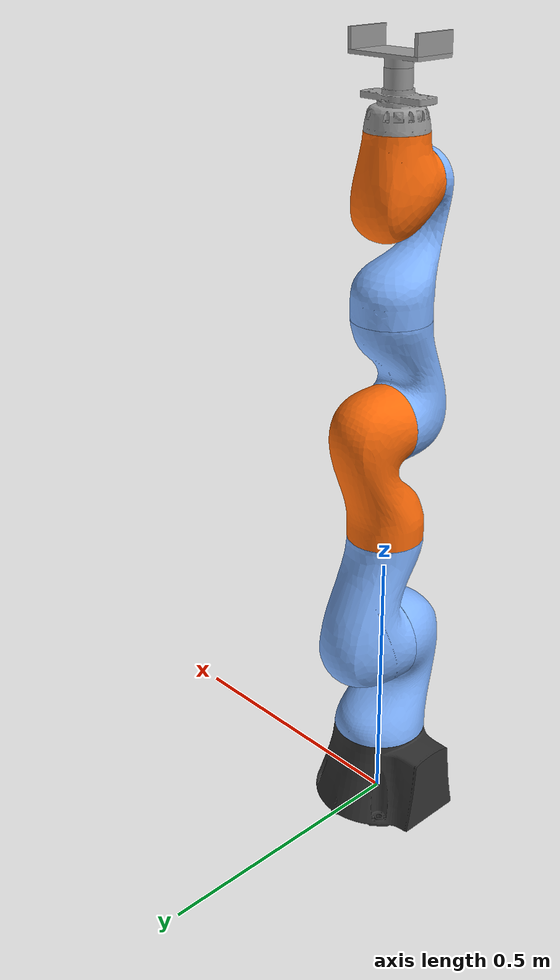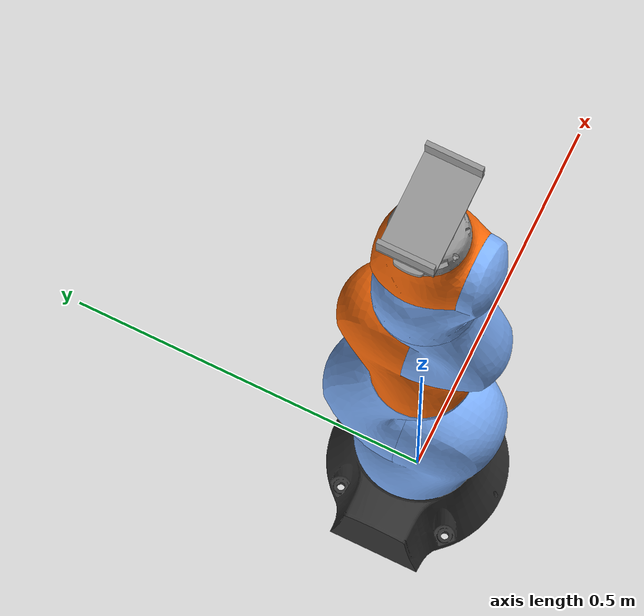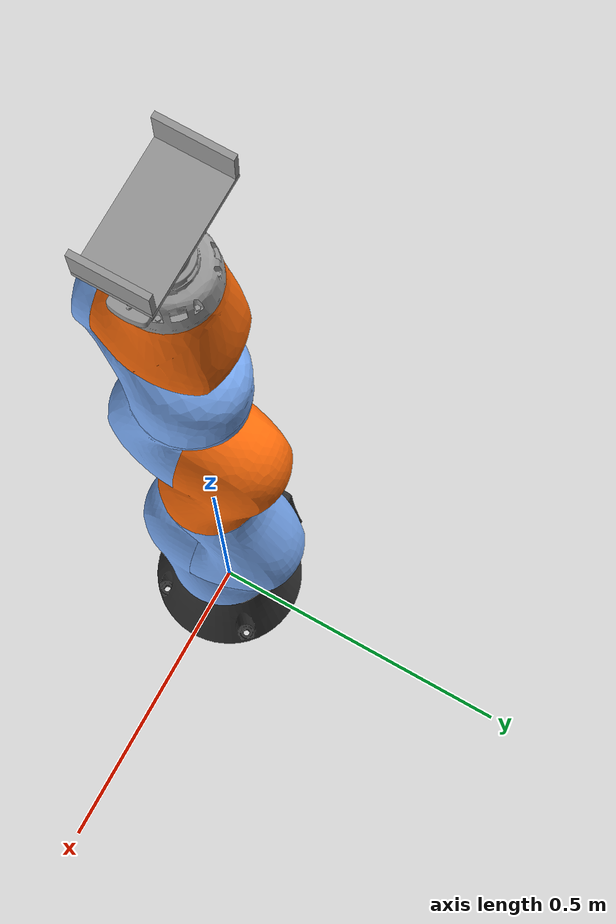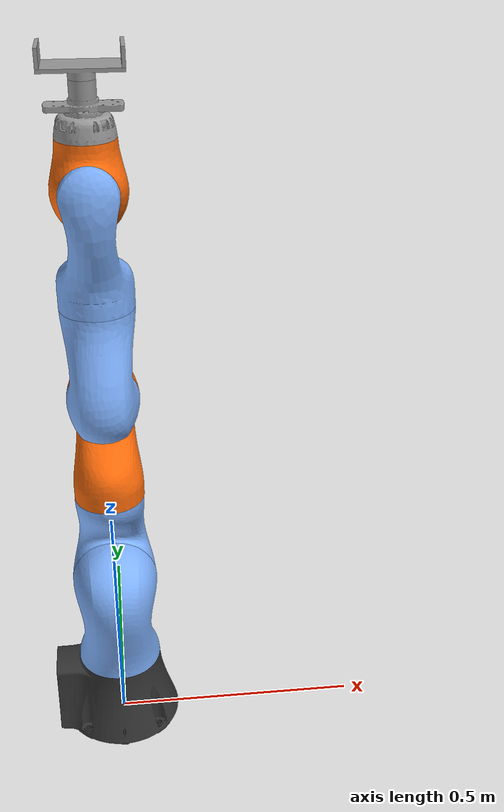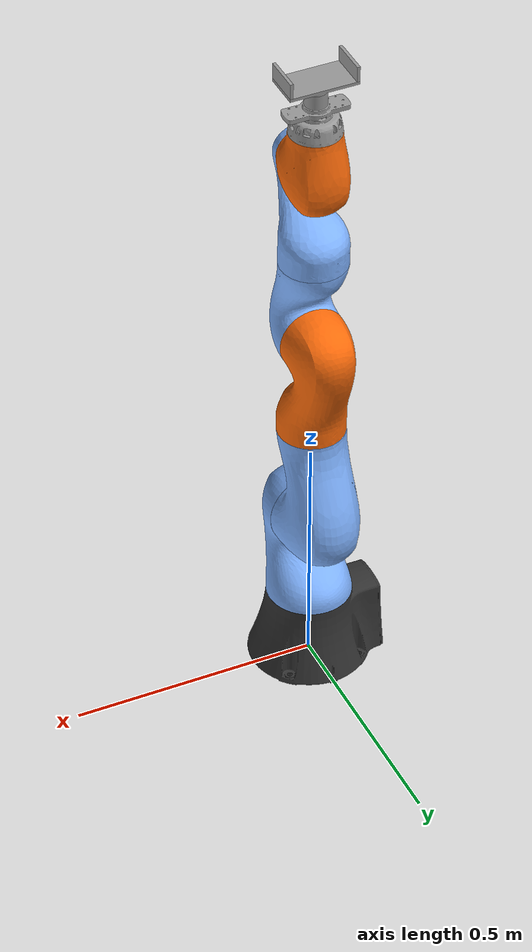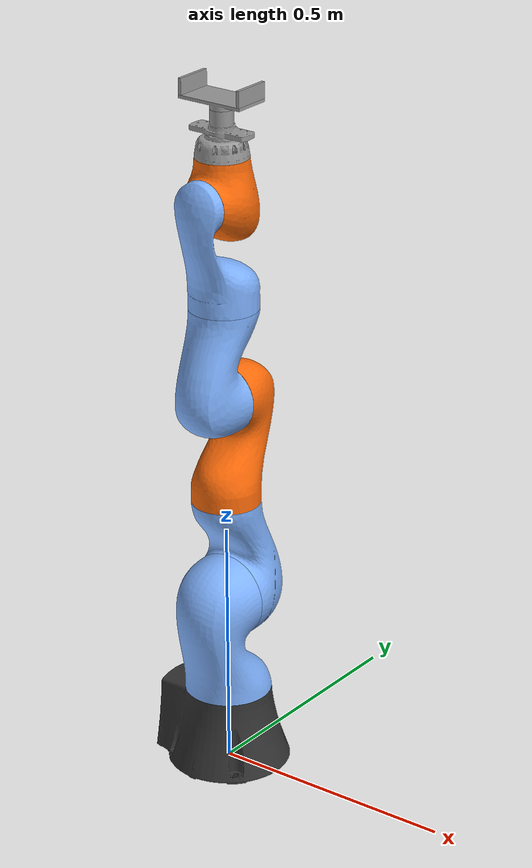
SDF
<?xml version="1.0" ?>
<sdf version='1.6'>
  <!-- TODO: 1.Add magnet
  2.Rename links
  3.Correct mass and other things
  4.Colorize
  5.Add sensors -->
  <world name='default'>
  <model name='kuka_with_magnetic_gripper'>
    <!-- Uncomment static to edit in gazebo -->
    <!-- Not neccesary for PyBullet Environment -->
    <link name='lbr_iiwa_link_0'>
      <pose frame=''>0 0 0 0 -0 0</pose>
      <inertial>
        <pose frame=''>-0.1 0 0.07 0 -0 0</pose>
        <!-- Mass should be 0 for environment, somethimg else to edit -->
        <mass>0</mass>
        <inertia>
          <ixx>0.05</ixx>
          <ixy>0</ixy>
          <ixz>0</ixz>
          <iyy>0.06</iyy>
          <iyz>0</iyz>
          <izz>0.03</izz>
        </inertia>
      </inertial>
      <collision name='lbr_iiwa_link_0_collision'>
        <pose frame=''>0 0 0 0 -0 0</pose>
        <geometry>
          <mesh>
            <scale>1 1 1</scale>
            <uri>/meshes/link_0.stl</uri>
          </mesh>
        </geometry>
      </collision>
      <visual name='lbr_iiwa_link_0_visual'>
        <pose frame=''>0 0 0 0 -0 0</pose>
        <geometry>
          <mesh>
            <scale>1 1 1</scale>
            <uri>meshes/link_0.stl</uri>
          </mesh>
        </geometry>
        <material>
          <ambient>1 0 0 1</ambient>
          <diffuse>0.2 0.2 0.2 1.0</diffuse>
          <specular>0.4 0.4 0.4 1</specular>
          <emissive>0 0 0 0</emissive>
        </material>
      </visual>
    </link>
    <link name='lbr_iiwa_link_1'>
      <pose frame=''>0 0 0.1575 0 -0 0</pose>
      <inertial>
        <pose frame=''>0 -0.03 0.12 0 -0 0</pose>
        <mass>4</mass>
        <inertia>
          <ixx>0.1</ixx>
          <ixy>0</ixy>
          <ixz>0</ixz>
          <iyy>0.09</iyy>
          <iyz>0</iyz>
          <izz>0.02</izz>
        </inertia>
      </inertial>
      <collision name='lbr_iiwa_link_1_collision'>
        <pose frame=''>0 0 0 0 -0 0</pose>
        <geometry>
          <mesh>
            <scale>1 1 1</scale>
            <uri>meshes/link_1.stl</uri>
          </mesh>
        </geometry>
      </collision>
      <visual name='lbr_iiwa_link_1_visual'>
        <pose frame=''>0 0 0 0 -0 0</pose>
        <geometry>
          <mesh>
            <scale>1 1 1</scale>
            <uri>meshes/link_1.stl</uri>
          </mesh>
        </geometry>
        <material>
          <ambient>1 0 0 1</ambient>
          <diffuse>0.5 0.7 1.0 1.0</diffuse>
          <specular>0.5 0.5 0.5 1</specular>
          <emissive>0 0 0 0</emissive>
        </material>
      </visual>
    </link>
    <joint name='J0' type='revolute'>
      <child>lbr_iiwa_link_1</child>
      <parent>lbr_iiwa_link_0</parent>
      <axis>
        <xyz>0 0 1</xyz>
        <limit>
          <lower>-2.96706</lower>
          <upper>2.96706</upper>
          <effort>300</effort>
          <velocity>10</velocity>
        </limit>
        <dynamics>
          <damping>0.5</damping>
          <friction>0</friction>
          <spring_reference>0</spring_reference>
          <spring_stiffness>0</spring_stiffness>
        </dynamics>
      </axis>
    </joint>
    <link name='lbr_iiwa_link_2'>
      <pose frame=''>0 0 0.36 1.5708 -0 -3.14159</pose>
      <inertial>
        <pose frame=''>0.0003 0.059 0.042 0 -0 0</pose>
        <mass>4</mass>
        <inertia>
          <ixx>0.05</ixx>
          <ixy>0</ixy>
          <ixz>0</ixz>
          <iyy>0.018</iyy>
          <iyz>0</iyz>
          <izz>0.044</izz>
        </inertia>
      </inertial>
      <collision name='lbr_iiwa_link_2_collision'>
        <pose frame=''>0 0 0 0 -0 0</pose>
        <geometry>
          <mesh>
            <scale>1 1 1</scale>
            <uri>meshes/link_2.stl</uri>
          </mesh>
        </geometry>
      </collision>
      <visual name='lbr_iiwa_link_2_visual'>
        <pose frame=''>0 0 0 0 -0 0</pose>
        <geometry>
          <mesh>
            <scale>1 1 1</scale>
            <uri>meshes/link_2.stl</uri>
          </mesh>
        </geometry>
        <material>
          <ambient>1 0 0 1</ambient>
          <diffuse>0.5 0.7 1.0 1.0</diffuse>
          <specular>0.5 0.5 0.5 1</specular>
          <emissive>0 0 0 0</emissive>
        </material>
      </visual>
    </link>
    <joint name='J1' type='revolute'>
      <child>lbr_iiwa_link_2</child>
      <parent>lbr_iiwa_link_1</parent>
      <axis>
        <xyz>0 0 1</xyz>
        <limit>
          <lower>-2.0944</lower>
          <upper>2.0944</upper>
          <effort>300</effort>
          <velocity>10</velocity>
        </limit>
        <dynamics>
          <damping>0.5</damping>
          <friction>0</friction>
          <spring_reference>0</spring_reference>
          <spring_stiffness>0</spring_stiffness>
        </dynamics>
      </axis>
    </joint>
    <link name='lbr_iiwa_link_3'>
      <pose frame=''>0 -0 0.5645 0 0 0</pose>
      <inertial>
        <pose frame=''>0 0.03 0.13 0 -0 0</pose>
        <mass>3</mass>
        <inertia>
          <ixx>0.08</ixx>
          <ixy>0</ixy>
          <ixz>0</ixz>
          <iyy>0.075</iyy>
          <iyz>0</iyz>
          <izz>0.01</izz>
        </inertia>
      </inertial>
      <collision name='lbr_iiwa_link_3_collision'>
        <pose frame=''>0 0 0 0 -0 0</pose>
        <geometry>
          <mesh>
            <scale>1 1 1</scale>
            <uri>meshes/link_3.stl</uri>
          </mesh>
        </geometry>
      </collision>
      <visual name='lbr_iiwa_link_3_visual'>
        <pose frame=''>0 0 0 0 -0 0</pose>
        <geometry>
          <mesh>
            <scale>1 1 1</scale>
            <uri>meshes/link_3.stl</uri>
          </mesh>
        </geometry>
        <material>
          <ambient>1 0 0 1</ambient>
          <diffuse>1.0 0.423529411765 0.0392156862745 1.0</diffuse>
          <specular>0.5 0.5 0.5 1</specular>
          <emissive>0 0 0 0</emissive>
        </material>
      </visual>
    </link>
    <joint name='J2' type='revolute'>
      <child>lbr_iiwa_link_3</child>
      <parent>lbr_iiwa_link_2</parent>
      <axis>
        <xyz>0 0 1</xyz>
        <limit>
          <lower>-2.96706</lower>
          <upper>2.96706</upper>
          <effort>300</effort>
          <velocity>10</velocity>
        </limit>
        <dynamics>
          <damping>0.5</damping>
          <friction>0</friction>
          <spring_reference>0</spring_reference>
          <spring_stiffness>0</spring_stiffness>
        </dynamics>
      </axis>
    </joint>
    <link name='lbr_iiwa_link_4'>
      <pose frame=''>0 -0 0.78 1.5708 0 0</pose>
      <inertial>
        <pose frame=''>0 0.067 0.034 0 -0 0</pose>
        <mass>2.7</mass>
        <inertia>
          <ixx>0.03</ixx>
          <ixy>0</ixy>
          <ixz>0</ixz>
          <iyy>0.01</iyy>
          <iyz>0</iyz>
          <izz>0.029</izz>
        </inertia>
      </inertial>
      <collision name='lbr_iiwa_link_4_collision'>
        <pose frame=''>0 0 0 0 -0 0</pose>
        <geometry>
          <mesh>
            <scale>1 1 1</scale>
            <uri>meshes/link_4.stl</uri>
          </mesh>
        </geometry>
      </collision>
      <visual name='lbr_iiwa_link_4_visual'>
        <pose frame=''>0 0 0 0 -0 0</pose>
        <geometry>
          <mesh>
            <scale>1 1 1</scale>
            <uri>meshes/link_4.stl</uri>
          </mesh>
        </geometry>
        <material>
          <ambient>1 0 0 1</ambient>
          <diffuse>0.5 0.7 1.0 1.0</diffuse>
          <specular>0.5 0.5 0.5 1</specular>
          <emissive>0 0 0 0</emissive>
        </material>
      </visual>
    </link>
    <joint name='J3' type='revolute'>
      <child>lbr_iiwa_link_4</child>
      <parent>lbr_iiwa_link_3</parent>
      <axis>
        <xyz>0 0 1</xyz>
        <limit>
          <lower>-2.0944</lower>
          <upper>2.0944</upper>
          <effort>300</effort>
          <velocity>10</velocity>
        </limit>
        <dynamics>
          <damping>0.5</damping>
          <friction>0</friction>
          <spring_reference>0</spring_reference>
          <spring_stiffness>0</spring_stiffness>
        </dynamics>
      </axis>
    </joint>
    <link name='lbr_iiwa_link_5'>
      <pose frame=''>0 -0 0.9645 0 -0 -3.14159</pose>
      <inertial>
        <pose frame=''>0.0001 0.021 0.076 0 -0 0</pose>
        <mass>1.7</mass>
        <inertia>
          <ixx>0.02</ixx>
          <ixy>0</ixy>
          <ixz>0</ixz>
          <iyy>0.018</iyy>
          <iyz>0</iyz>
          <izz>0.005</izz>
        </inertia>
      </inertial>
      <collision name='lbr_iiwa_link_5_collision'>
        <pose frame=''>0 0 0 0 -0 0</pose>
        <geometry>
          <mesh>
            <scale>1 1 1</scale>
            <uri>meshes/link_5.stl</uri>
          </mesh>
        </geometry>
      </collision>
      <visual name='lbr_iiwa_link_5_visual'>
        <pose frame=''>0 0 0 0 -0 0</pose>
        <geometry>
          <mesh>
            <scale>1 1 1</scale>
            <uri>meshes/link_5.stl</uri>
          </mesh>
        </geometry>
        <material>
          <ambient>1 0 0 1</ambient>
          <diffuse>0.5 0.7 1.0 1.0</diffuse>
          <specular>0.5 0.5 0.5 1</specular>
          <emissive>0 0 0 0</emissive>
        </material>
      </visual>
    </link>
    <joint name='J4' type='revolute'>
      <child>lbr_iiwa_link_5</child>
      <parent>lbr_iiwa_link_4</parent>
      <axis>
        <xyz>0 0 1</xyz>
        <limit>
          <lower>-2.96706</lower>
          <upper>2.96706</upper>
          <effort>300</effort>
          <velocity>10</velocity>
        </limit>
        <dynamics>
          <damping>0.5</damping>
          <friction>0</friction>
          <spring_reference>0</spring_reference>
          <spring_stiffness>0</spring_stiffness>
        </dynamics>
      </axis>
    </joint>
    <link name='lbr_iiwa_link_6'>
      <pose frame=''>0 0 1.18 1.5708 -0 -3.14159</pose>
      <inertial>
        <pose frame=''>0 0.0006 0.0004 0 -0 0</pose>
        <mass>1.8</mass>
        <inertia>
          <ixx>0.005</ixx>
          <ixy>0</ixy>
          <ixz>0</ixz>
          <iyy>0.0036</iyy>
          <iyz>0</iyz>
          <izz>0.0047</izz>
        </inertia>
      </inertial>
      <collision name='lbr_iiwa_link_6_collision'>
        <pose frame=''>0 0 0 0 -0 0</pose>
        <geometry>
          <mesh>
            <scale>1 1 1</scale>
            <uri>meshes/link_6.stl</uri>
          </mesh>
        </geometry>
      </collision>
      <visual name='lbr_iiwa_link_6_visual'>
        <pose frame=''>0 0 0 0 -0 0</pose>
        <geometry>
          <mesh>
            <scale>1 1 1</scale>
            <uri>meshes/link_6.stl</uri>
          </mesh>
        </geometry>
        <material>
          <ambient>1 0 0 1</ambient>
          <diffuse>1.0 0.423529411765 0.0392156862745 1.0</diffuse>
          <specular>0.5 0.5 0.5 1</specular>
          <emissive>0 0 0 0</emissive>
        </material>
      </visual>
    </link>
    <joint name='J5' type='revolute'>
      <child>lbr_iiwa_link_6</child>
      <parent>lbr_iiwa_link_5</parent>
      <axis>
        <xyz>0 0 1</xyz>
        <limit>
          <lower>-2.0944</lower>
          <upper>2.0944</upper>
          <effort>300</effort>
          <velocity>10</velocity>
        </limit>
        <dynamics>
          <damping>0.5</damping>
          <friction>0</friction>
          <spring_reference>0</spring_reference>
          <spring_stiffness>0</spring_stiffness>
        </dynamics>
      </axis>
    </joint>
    <link name='lbr_iiwa_link_7'>
      <pose frame=''>0 0 1.261 0 0 0</pose>
      <inertial>
        <pose frame=''>0 0 0.02 0 -0 0</pose>
        <mass>1.3</mass>
        <inertia>
          <ixx>0.001</ixx>
          <ixy>0</ixy>
          <ixz>0</ixz>
          <iyy>0.001</iyy>
          <iyz>0</iyz>
          <izz>0.001</izz>
        </inertia>
      </inertial>
      <collision name='lbr_iiwa_link_7_collision'>
        <pose frame=''>0 0 0 0 -0 0</pose>
        <geometry>
          <mesh>
            <scale>1 1 1</scale>
            <uri>meshes/link_7.stl</uri>
          </mesh>
        </geometry>
      </collision>
      <visual name='lbr_iiwa_link_7_visual'>
        <pose frame=''>0 0 0 0 -0 0</pose>
        <geometry>
          <mesh>
            <scale>1 1 1</scale>
            <uri>meshes/link_7.stl</uri>
          </mesh>
        </geometry>
        <material>
          <ambient>1 0 0 1</ambient>
          <diffuse>0.6 0.6 0.6 1</diffuse>
          <specular>0.5 0.5 0.5 1</specular>
          <emissive>0 0 0 0</emissive>
        </material>
      </visual>
    </link>
    <joint name='J6' type='revolute'>
      <child>lbr_iiwa_link_7</child>
      <parent>lbr_iiwa_link_6</parent>
      <axis>
        <xyz>0 0 1</xyz>
        <limit>
          <lower>-3.05433</lower>
          <upper>3.05433</upper>
          <effort>300</effort>
          <velocity>10</velocity>
        </limit>
        <dynamics>
          <damping>0.5</damping>
          <friction>0</friction>
          <spring_reference>0</spring_reference>
          <spring_stiffness>0</spring_stiffness>
        </dynamics>
      </axis>
    </joint>

    <!-- Attach the base of the gripper to the end of the arm -->
    <joint name='gripper_to_arm' type='fixed'>
      <parent>lbr_iiwa_link_7</parent>
      <child>gripper</child>
    </joint>

    <link name='gripper'>
      <pose frame=''>0 0 1.305 1.57 0 0</pose>
      <inertial>
        <pose frame=''>0 0 0 0 -0 0</pose>
        <mass>0.2</mass>
        <inertia>
          <ixx>1</ixx>
          <ixy>0</ixy>
          <ixz>0</ixz>
          <iyy>1</iyy>
          <iyz>0</iyz>
          <izz>1</izz>
        </inertia>
      </inertial>
      <visual name='base_visual'>
        <pose frame=''>0 0 0 0 0 0 </pose>
        <geometry>
          <mesh>
            <scale>0.001 0.001 0.001</scale>
            <uri>meshes/base_old.stl</uri>
          </mesh>
        </geometry>
        <material>
          <ambient>1 0 0 1</ambient>
          <diffuse>0.6 0.6 0.6 1</diffuse>
          <specular>0.5 0.5 0.5 1</specular>
          <emissive>0 0 0 0</emissive>
        </material>
      </visual>
      <collision name='base_collision'>
        <pose frame=''>0 0 0 0 0 0</pose>
        <geometry>
          <mesh>
            <scale>0.001 0.001 0.001</scale>
            <uri>meshes/base_old.stl</uri>
          </mesh>
        </geometry>
      </collision>
    </link>

    <joint name='collet_joint' type='fixed'>
      <parent>gripper</parent>
      <child>collet</child>
    </joint>

    <link name='collet'>
      <pose frame=''>0 0.04 1.303 1.57 0 0</pose>
      <inertial>
        <pose frame=''>0 0 0.04 0 0 0</pose>
        <mass>0.2</mass>
        <inertia>
          <ixx>0.1</ixx>
          <ixy>0</ixy>
          <ixz>0</ixz>
          <iyy>0.1</iyy>
          <iyz>0</iyz>
          <izz>0.1</izz>
        </inertia>
      </inertial>
      <visual name='collet_visual'>
        <pose frame=''>0 0 0.04 0 0 0</pose>
        <geometry>
          <mesh>
            <scale>0.001 0.001 0.001</scale>
            <uri>meshes/collet_old.stl</uri>
          </mesh>
        </geometry>
        <material>
          <ambient>1 0 0 1</ambient>
          <diffuse>0.6 0.6 0.6 1</diffuse>
          <specular>0.5 0.5 0.5 1</specular>
          <emissive>0 0 0 0</emissive>
        </material>
      </visual>
       <collision name='collet_collision'>
        <pose frame=''>0 0 0.04 0 0 0</pose>
        <geometry>
          <mesh>
            <scale>0.001 0.001 0.001</scale>
            <uri>meshes/collet_old.stl</uri>
          </mesh>
        </geometry>
      </collision>
    </link>

    <joint name='slider_joint' type='fixed'> <!--prismatic-->
      <parent>collet</parent>
      <child>end_effector</child>
      <axis>
        <xyz>0 1 0</xyz>
        <limit>
          <lower>0</lower>
          <upper>0.025</upper>
          <effort>0</effort>
          <velocity>0</velocity>
        </limit>
      </axis>
    </joint>

    <link name='end_effector'> <!--slider-->
      <pose frame=''>0 0 1.35 0 0 0</pose>
      <inertial>
        <pose frame=''>-0.00 0 0.0 0 0 0 </pose>
        <mass>0.2</mass>
        <inertia>
          <ixx>0.1</ixx>
          <ixy>0</ixy>
          <ixz>0</ixz>
          <iyy>0.1</iyy>
          <iyz>0</iyz>
          <izz>0.1</izz>
        </inertia>
      </inertial>
      <visual name='slider_visual'>
        <pose frame=''>0 0 0 0 0 0 </pose>
        <geometry>
          <mesh>
            <scale>0.00005 0.00005 0.00005</scale>
            <uri>meshes/gripper_push_base.stl</uri>
          </mesh>
        </geometry>
        <material>
          <ambient>1 0 0 1</ambient>
          <diffuse>0.6 0.6 0.6 1</diffuse>
          <specular>0.5 0.5 0.5 1</specular>
          <emissive>0 0 0 0</emissive>
        </material>
      </visual>
      <collision name='slider_collision'>
        <pose frame=''>0 0 0 0 0 0 </pose>
        <geometry>
          <mesh>
            <scale>0.00005 0.00005 0.00005</scale>
            <uri>meshes/gripper_push_base.stl</uri>
          </mesh>
        </geometry>
      </collision>
    </link>

    <joint name='push_left_joint' type='fixed'>
      <parent>end_effector</parent>
      <child>push_left</child>
    </joint>

  <link name='push_left'>
      <pose frame=''>0 0 1.35 0 0 0</pose>
      <inertial>
      <pose frame=''>0 0 0 0.0 0.0 0.0</pose>
      <mass>0.2</mass>
      <inertia>
          <ixx>0.001</ixx>
          <ixy>0</ixy>
          <ixz>0</ixz>
          <iyy>0.001</iyy>
          <iyz>0</iyz>
          <izz>0.001</izz>
        </inertia>
      </inertial>
    <visual>
      <pose frame=''>0 0 0 0.0 0.0 0.0</pose>
      <geometry>
        <mesh>
            <uri>meshes/gripper_push_left.stl</uri>
            <scale>0.00005 0.00005 0.00005</scale>
        </mesh>
      </geometry>
      <material>
          <ambient>1 0 0 1</ambient>
          <diffuse>0.6 0.6 0.6 1</diffuse>
          <specular>0.5 0.5 0.5 1</specular>
          <emissive>0 0 0 0</emissive>
        </material>
    </visual>
    <collision>
      <pose frame=''>0 0 0 0.0 0.0 0.0</pose>
      <geometry>
        <mesh>
            <uri>meshes/gripper_push_left.stl</uri>
            <scale>0.00005 0.00005 0.00005</scale>
        </mesh>
      </geometry>
    </collision>
  </link>

    <joint name='push_right_joint' type='fixed'>
      <parent>end_effector</parent>
      <child>push_right</child>
    </joint>

  <link name='push_right'>
      <pose frame=''>0 0 1.35 0 0.0 0</pose>
      <inertial>
      <pose frame=''>0 0 0 0.0 0.0 0.0</pose>
      <mass>0.2</mass>
      <inertia>
          <ixx>0.001</ixx>
          <ixy>0</ixy>
          <ixz>0</ixz>
          <iyy>0.001</iyy>
          <iyz>0</iyz>
          <izz>0.001</izz>
        </inertia>
      </inertial>
    <visual>
      <pose frame=''>0 0 0 0.0 0.0 0.0</pose>
      <geometry>
        <mesh>
            <uri>meshes/gripper_push_right.stl</uri>
            <scale>0.00005 0.00005 0.00005</scale>
        </mesh>
      </geometry>
      <material>
          <ambient>1 0 0 1</ambient>
          <diffuse>0.6 0.6 0.6 1</diffuse>
          <specular>0.5 0.5 0.5 1</specular>
          <emissive>0 0 0 0</emissive>
        </material>
    </visual>
    <collision>
      <pose frame=''>0 0 0 0.0 0.0 0.0</pose>
      <geometry>
        <mesh>
            <uri>meshes/gripper_push_right.stl</uri>
            <scale>0.00005 0.00005 0.00005</scale>
        </mesh>
      </geometry>
    </collision>
  </link>

  </model>
</world>
</sdf>
